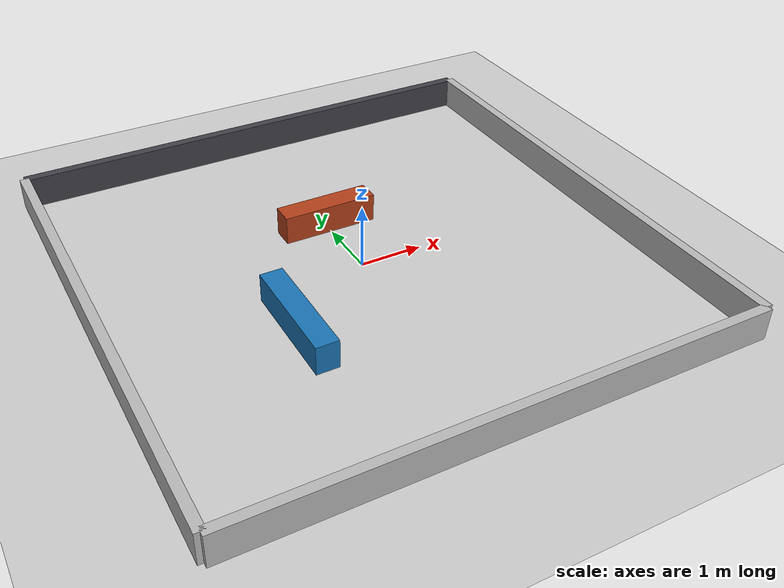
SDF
<?xml version="1.0" ?>
<sdf version="1.6">
  <world name="navigation_arena">
    <include><uri>model://sun</uri></include>
    <include><uri>model://ground_plane</uri></include>
    <physics type="ode"><max_step_size>0.001</max_step_size><real_time_update_rate>1000</real_time_update_rate></physics>
    <gui><camera name="user_camera"><pose>5 -6 5 0 0.5 2.4</pose></camera></gui>
    <model name="wall_north"><static>true</static><link name="link"><collision name="collision"><geometry><box><size>8 0.15 0.5</size></box></geometry></collision><visual name="visual"><geometry><box><size>8 0.15 0.5</size></box></geometry><material><diffuse>0.25 0.25 0.28 1</diffuse></material></visual></link><pose>0 4 0.25 0 0 0</pose></model>
    <model name="wall_south"><static>true</static><link name="link"><collision name="collision"><geometry><box><size>8 0.15 0.5</size></box></geometry></collision><visual name="visual"><geometry><box><size>8 0.15 0.5</size></box></geometry></visual></link><pose>0 -4 0.25 0 0 0</pose></model>
    <model name="wall_east"><static>true</static><link name="link"><collision name="collision"><geometry><box><size>0.15 8 0.5</size></box></geometry></collision><visual name="visual"><geometry><box><size>0.15 8 0.5</size></box></geometry></visual></link><pose>4 0 0.25 0 0 0</pose></model>
    <model name="wall_west"><static>true</static><link name="link"><collision name="collision"><geometry><box><size>0.15 8 0.5</size></box></geometry></collision><visual name="visual"><geometry><box><size>0.15 8 0.5</size></box></geometry></visual></link><pose>-4 0 0.25 0 0 0</pose></model>
    <model name="obstacle_1"><static>true</static><link name="link"><collision name="collision"><geometry><box><size>1.5 0.35 0.45</size></box></geometry></collision><visual name="visual"><geometry><box><size>1.5 0.35 0.45</size></box></geometry><material><diffuse>0.7 0.25 0.1 1</diffuse></material></visual></link><pose>0 1.2 0.225 0 0 0</pose></model>
    <model name="obstacle_2"><static>true</static><link name="link"><collision name="collision"><geometry><box><size>0.35 1.8 0.45</size></box></geometry></collision><visual name="visual"><geometry><box><size>0.35 1.8 0.45</size></box></geometry><material><diffuse>0.1 0.45 0.7 1</diffuse></material></visual></link><pose>-1.5 -1.0 0.225 0 0 0</pose></model>
  </world>
</sdf>
